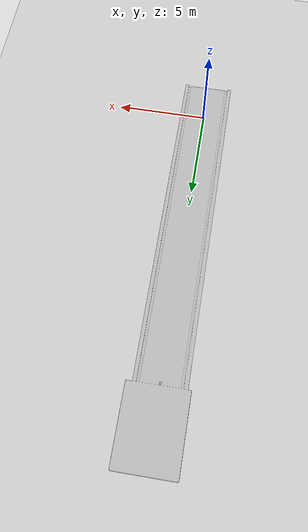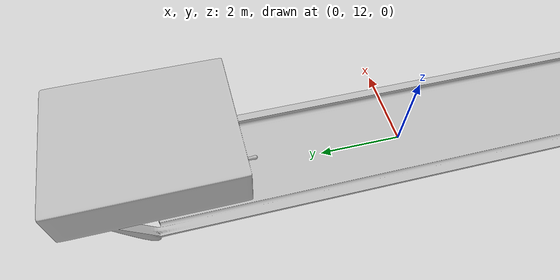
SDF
<sdf version="1.7">
 <world name="default">
  <model name="ground_plane">
   <static>1</static>
   <link name="link">
    <collision name="collision">
     <geometry><plane><normal>0 0 1</normal><size>50 100</size></plane></geometry>
     <surface>
      <contact><collide_bitmask>65535</collide_bitmask></contact>
      <friction><ode><mu>100</mu><mu2>50</mu2></ode></friction>
     </surface>
    </collision>
    <visual name="visual">
     <cast_shadows>0</cast_shadows>
     <geometry><plane><normal>0 0 1</normal><size>50 100</size></plane></geometry>
     <material>
      <script><uri>file://media/materials/scripts/gazebo.material</uri><name>Gazebo/Grey</name></script>
     </material>
    </visual>
   </link>
  </model>
  <model name="platform">
   <link name="link_0">
    <inertial>
     <mass>5000</mass>
     <inertia><ixx>66677.1</ixx><ixy>0</ixy><ixz>0</ixz><iyy>677.083</iyy><iyz>0</iyz><izz>67333.3</izz></inertia>
    </inertial>
    <pose>0.0022 4.46599 -0.015017 0 -0 0</pose>
    <visual name="visual">
     <geometry><box><size>1.95 20 0.25</size></box></geometry>
     <material>
      <lighting>1</lighting>
      <script><uri>file://media/materials/scripts/gazebo.material</uri><name>Gazebo/Grey</name></script>
      <shader type="pixel"><normal_map>__default__</normal_map></shader>
      <ambient>0.3 0.3 0.3 1</ambient>
      <diffuse>0.7 0.7 0.7 1</diffuse>
      <specular>0.01 0.01 0.01 1</specular>
      <emissive>0 0 0 1</emissive>
     </material>
    </visual>
    <collision name="collision">
     <geometry><box><size>1.95 20 0.25</size></box></geometry>
     <surface>
      <friction>
       <ode><mu>100</mu><mu2>100</mu2><fdir1>0 0 0</fdir1><slip1>0</slip1><slip2>0</slip2></ode>
       <torsional>
        <coefficient>0.2</coefficient>
        <patch_radius>0</patch_radius>
        <surface_radius>0</surface_radius>
        <use_patch_radius>1</use_patch_radius>
        <ode><slip>0</slip></ode>
       </torsional>
      </friction>
      <bounce><restitution_coefficient>0</restitution_coefficient><threshold>1e+06</threshold></bounce>
      <contact>
       <collide_without_contact>0</collide_without_contact>
       <collide_without_contact_bitmask>1</collide_without_contact_bitmask>
       <collide_bitmask>1</collide_bitmask>
       <ode>
        <soft_cfm>0</soft_cfm>
        <soft_erp>0.2</soft_erp>
        <kp>1e+13</kp>
        <kd>1</kd>
        <max_vel>100.00</max_vel>
        <min_depth>0</min_depth>
       </ode>
       <bullet>
        <split_impulse>1</split_impulse>
        <split_impulse_penetration_threshold>-0.01</split_impulse_penetration_threshold>
        <soft_cfm>0</soft_cfm>
        <soft_erp>0.2</soft_erp>
        <kp>1e+13</kp>
        <kd>1</kd>
       </bullet>
      </contact>
     </surface>
    </collision>
   </link>
   <model name="bowling_alley">
    <link name="link_0">
     <inertial>
      <mass>1000</mass>
      <inertia><ixx>166.667</ixx><ixy>0</ixy><ixz>0</ixz><iyy>166.667</iyy><iyz>0</iyz><izz>166.667</izz></inertia>
      <pose>0 0 0.1 0 -0 0</pose>
     </inertial>
     <pose>0 0 0.1 1.5707 -0 0</pose>
     <visual name="visual">
      <pose>0 0 0.1 0 -0 0</pose>
      <geometry>
       <mesh><uri>model://bowling_alley/meshes/bowling-alley.obj</uri><scale>1 1 1</scale></mesh>
      </geometry>
     </visual>
     <collision name="collision">
      <pose>0 0 0.1 0 -0 0</pose>
      <geometry>
       <mesh><uri>model://bowling_alley/meshes/bowling-alley-collision.obj</uri><scale>1 1 1</scale></mesh>
      </geometry>
      <surface>
       <friction>
        <ode><mu>100</mu><mu2>100</mu2><fdir1>0.1 0.2 0</fdir1><slip1>0</slip1><slip2>0</slip2></ode>
        <torsional>
         <coefficient>0.2</coefficient>
         <patch_radius>0</patch_radius>
         <surface_radius>0</surface_radius>
         <use_patch_radius>1</use_patch_radius>
         <ode><slip>0</slip></ode>
        </torsional>
       </friction>
       <bounce><restitution_coefficient>0</restitution_coefficient><threshold>10</threshold></bounce>
       <contact>
        <collide_without_contact>0</collide_without_contact>
        <collide_without_contact_bitmask>1</collide_without_contact_bitmask>
        <collide_bitmask>1</collide_bitmask>
        <ode>
         <soft_cfm>0</soft_cfm>
         <soft_erp>0.2</soft_erp>
         <kp>1e+13</kp>
         <kd>1</kd>
         <max_vel>100.00</max_vel>
         <min_depth>0</min_depth>
        </ode>
        <bullet>
         <split_impulse>1</split_impulse>
         <split_impulse_penetration_threshold>-0.01</split_impulse_penetration_threshold>
         <soft_cfm>0</soft_cfm>
         <soft_erp>0.2</soft_erp>
         <kp>1e+13</kp>
         <kd>1</kd>
        </bullet>
       </contact>
      </surface>
     </collision>
    </link>
    <static>1</static>
    <pose>-0.0022 -4.46599 0.015018 0 -0 0</pose>
   </model>
   <static>0</static>
   <pose>-4.3e-05 3.56533 0.140005 1e-06 -0 -3e-06</pose>
  </model>
  <model name="bowling_pin">
   <link name="link_0">
    <sensor name="depth_camera" type="depth">
     <pose>0 0 0 -1.5707 -1.5707 0</pose>
     <update_rate>20</update_rate>
     <camera>
      <horizontal_fov>1.047198</horizontal_fov>
      <image><width>640</width><height>480</height><format>R8G8B8</format></image>
      <clip><near>0.05</near><far>20</far></clip>
     </camera>
     <plugin name="depth_camera_controller" filename="libgazebo_ros_openni_kinect.so">
      <baseline>0.2</baseline>
      <alwaysOn>true</alwaysOn>
      <updateRate>1.0</updateRate>
      <cameraName>depth_camera_ir</cameraName>
      <imageTopicName>/depth_camera/color/image_raw</imageTopicName>
      <cameraInfoTopicName>/depth_camera/color/camera_info</cameraInfoTopicName>
      <depthImageTopicName>/depth_camera/depth/image_raw</depthImageTopicName>
      <depthImageInfoTopicName>/depth_camera/depth/camera_info</depthImageInfoTopicName>
      <pointCloudTopicName>/depth_camera/depth/points</pointCloudTopicName>
      <frameName>link_0</frameName>
      <pointCloudCutoff>0.0</pointCloudCutoff>
      <pointCloudCutoffMax>10.0</pointCloudCutoffMax>
      <distortionK1>0.00000001</distortionK1>
      <distortionK2>0.00000001</distortionK2>
      <distortionK3>0.00000001</distortionK3>
      <distortionT1>0.00000001</distortionT1>
      <distortionT2>0.00000001</distortionT2>
      <CxPrime>0</CxPrime>
      <Cx>0</Cx>
      <Cy>0</Cy>
      <focalLength>0</focalLength>
      <hackBaseline>0</hackBaseline>
     </plugin>
    </sensor>
    <inertial>
     <mass>1.6</mass>
     <inertia>
      <ixx>0.000212</ixx>
      <ixy>0</ixy>
      <ixz>0</ixz>
      <iyy>3.4e-05</iyy>
      <iyz>0</iyz>
      <izz>0.000212</izz>
     </inertia>
    </inertial>
    <pose>0 0 0 1.5707 -0 0</pose>
    <visual name="visual">
     <geometry>
      <mesh><uri>model://bowling_pin_black/meshes/bowling-pin-black.obj</uri><scale>1 1 1</scale></mesh>
     </geometry>
    </visual>
    <collision name="collision">
     <geometry>
      <mesh><uri>model://bowling_pin_black/meshes/bowling-pin-black.obj</uri><scale>1 1 1</scale></mesh>
     </geometry>
     <surface>
      <friction>
       <ode><mu>0.4</mu><mu2>0.4</mu2><fdir1>0 0 0</fdir1><slip1>0</slip1><slip2>0</slip2></ode>
       <torsional>
        <coefficient>1</coefficient>
        <patch_radius>0</patch_radius>
        <surface_radius>0</surface_radius>
        <use_patch_radius>1</use_patch_radius>
        <ode><slip>0</slip></ode>
       </torsional>
      </friction>
      <bounce><restitution_coefficient>0</restitution_coefficient><threshold>1e+06</threshold></bounce>
      <contact>
       <collide_without_contact>0</collide_without_contact>
       <collide_without_contact_bitmask>1</collide_without_contact_bitmask>
       <collide_bitmask>1</collide_bitmask>
       <ode>
        <soft_cfm>0</soft_cfm>
        <soft_erp>0.2</soft_erp>
        <kp>1e+13</kp>
        <kd>1</kd>
        <max_vel>100.00</max_vel>
        <min_depth>0</min_depth>
       </ode>
       <bullet>
        <split_impulse>1</split_impulse>
        <split_impulse_penetration_threshold>-0.01</split_impulse_penetration_threshold>
        <soft_cfm>0</soft_cfm>
        <soft_erp>0.2</soft_erp>
        <kp>1e+13</kp>
        <kd>1</kd>
       </bullet>
      </contact>
     </surface>
    </collision>
   </link>
   <static>0</static>
   <pose>0 16 0.45811 1.57068 0 0</pose>
  </model>
 </world>
</sdf>
